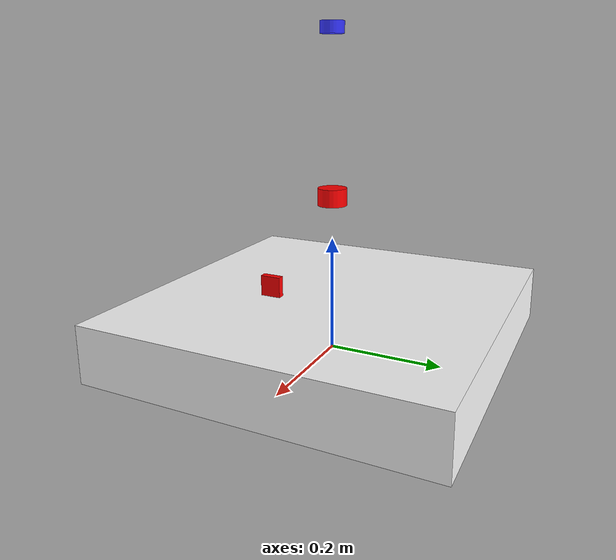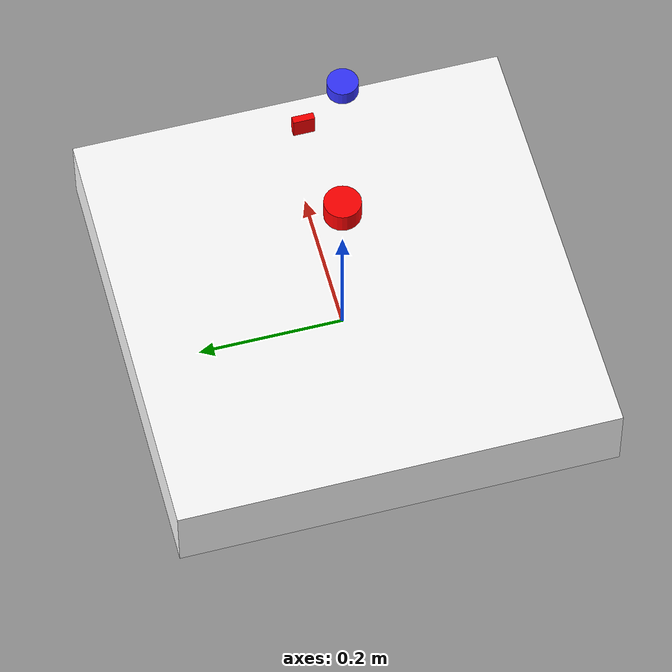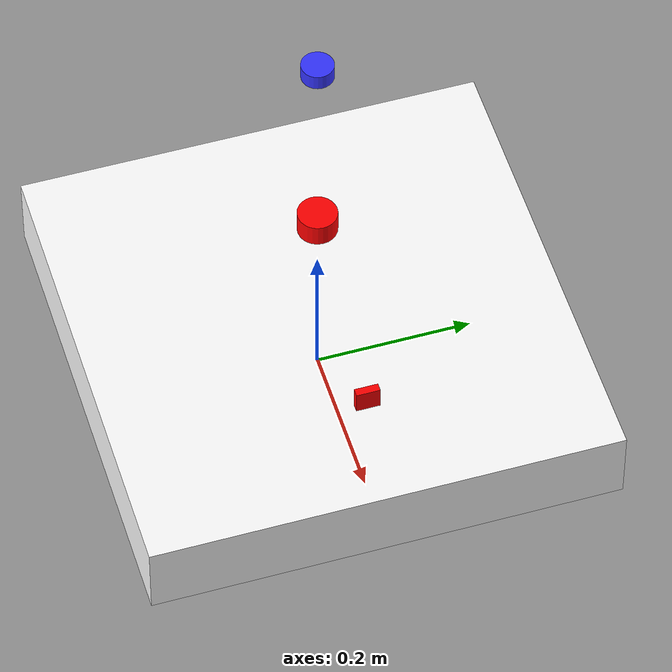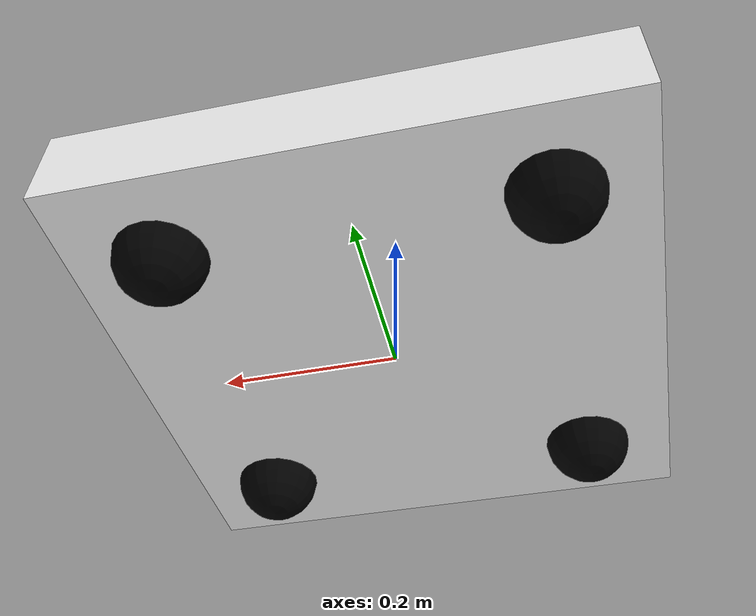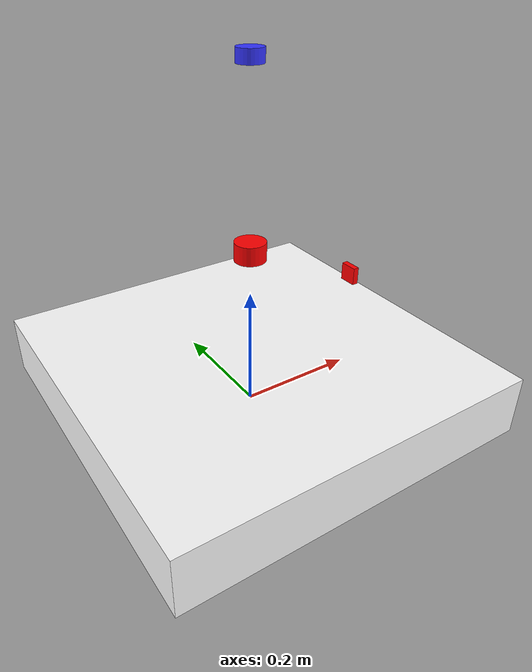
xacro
<?xml version="1.0"?>
<robot xmlns:xacro="http://www.ros.org/wiki/xacro"  name="rect_obj">
    <xacro:arg name="prefix" default="" />

    <xacro:include filename="rect_obj_core_corr.xacro"/>
    <xacro:include filename="lidar_corr_rect_obj.xacro"/>
    <xacro:include filename="camera_corr_rect_obj.xacro"/>
    <xacro:include filename="imu_corr_rect_obj.xacro"/>

    <xacro:rect_obj prefix=""/>
    <xacro:lidar_module prefix=""/>
    <xacro:camera_module prefix=""/>
    <xacro:imu_module prefix=""/>

</robot>

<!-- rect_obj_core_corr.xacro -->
<robot xmlns:xacro="http://www.ros.org/wiki/xacro"  >

    <xacro:macro name="rect_obj" params="prefix">

    <xacro:include filename="inertial_macros.xacro"/>

    <material name="white">
        <color rgba="1 1 1 1" />
    </material>

    <material name="orange">
        <color rgba="1 0.3 0.1 1" />
    </material>

    <material name="blue">
        <color rgba="0.2 0.2 1 1" />
    </material>

    <material name="red">
        <color rgba="1 0 0 1" />
    </material>

    <material name="black">
        <color rgba="0 0 0 1" />
    </material>

    <!-- Base link-->
    <link name="${prefix}base_link">

    </link>

    <!-- Base_Footprint Link-->

    <joint name="${prefix}base_footprint_joint" type="fixed">
        <parent link="${prefix}base_link" />
        <child link="${prefix}base_footprint" />
        <origin xyz= '0 0 0' rpy="0 0 0"/>
    </joint>
    <link name="${prefix}base_footprint">
    </link>

    <!-- chassi link-->
    <joint name="${prefix}chassis_joint" type="fixed">
        <parent link="${prefix}base_link" />
        <child link="${prefix}chassis" />
        <origin xyz= '0 0 0'/>
    </joint>

    <link name="${prefix}chassis">
        <visual>
            <origin xyz="0 0 0.05" />
            <geometry>
                <box size="0.6 0.6 0.1"/>
            </geometry>
            <material name="white" />
        </visual>
        <collision>
            <origin xyz="0 0 0.05" />
            <geometry>
                <box size="0.6 0.6 0.1"/>
            </geometry>
        </collision>
        <xacro:inertial_box mass="1.0" x="0.6" y="0.6" z="0.1">
            <origin xyz="0 0 0.05" rpy="0 0 0"/>
        </xacro:inertial_box>
    </link>

    <gazebo reference="${prefix}chassis">
        <material>Gazebo/White</material>
    </gazebo>

    <!-- caster wheel link front right-->

    <joint name="${prefix}caster_wheel_joint_fr" type="fixed">
        <parent link="${prefix}chassis"/>
        <child link="${prefix}caster_wheel_fr"/>
        <origin xyz="0.2 -0.2 0"/>
    </joint>

    <link name="${prefix}caster_wheel_fr">
        <visual>
            <geometry>
                <sphere radius="0.05"/>
            </geometry>
            <material name="black"/>
        </visual>
        <collision>
            <geometry>
                <sphere radius="0.05"/>
            </geometry>
        </collision>
        <xacro:inertial_sphere mass="0.1" radius="0.05">
            <origin xyz="0 0 0" rpy="0 0 0"/>
        </xacro:inertial_sphere>
    </link>

    <gazebo reference="${prefix}caster_wheel_fr">
        <material>Gazebo/Black</material>
        <mu1 value="0.1"/>
        <mu2 value="0.1"/>

    </gazebo>

    <!-- caster wheel link front left-->

    <joint name="${prefix}caster_wheel_joint_fl" type="fixed">
        <parent link="${prefix}chassis"/>
        <child link="${prefix}caster_wheel_fl"/>
        <origin xyz="0.2 0.2 0"/>
    </joint>

    <link name="${prefix}caster_wheel_fl">
        <visual>
            <geometry>
                <sphere radius="0.05"/>
            </geometry>
            <material name="black"/>
        </visual>
        <collision>
            <geometry>
                <sphere radius="0.05"/>
            </geometry>
        </collision>
        <xacro:inertial_sphere mass="0.1" radius="0.05">
            <origin xyz="0 0 0" rpy="0 0 0"/>
        </xacro:inertial_sphere>
    </link>

    <gazebo reference="${prefix}caster_wheel_fl">
        <material>Gazebo/Black</material>
        <mu1 value="0.1"/>
        <mu2 value="0.1"/>

    </gazebo>

    <!-- caster wheel link back right-->

    <joint name="${prefix}caster_wheel_joint_br" type="fixed">
        <parent link="${prefix}chassis"/>
        <child link="${prefix}caster_wheel_br"/>
        <origin xyz="-0.2 -0.2 0"/>
    </joint>

    <link name="${prefix}caster_wheel_br">
        <visual>
            <geometry>
                <sphere radius="0.05"/>
            </geometry>
            <material name="black"/>
        </visual>
        <collision>
            <geometry>
                <sphere radius="0.05"/>
            </geometry>
        </collision>
        <xacro:inertial_sphere mass="0.1" radius="0.05">
            <origin xyz="0 0 0" rpy="0 0 0"/>
        </xacro:inertial_sphere>
    </link>

    <gazebo reference="${prefix}caster_wheel_br">
        <material>Gazebo/Black</material>
        <mu1 value="0.1"/>
        <mu2 value="0.1"/>

    </gazebo>

    <!-- caster wheel link back left-->

    <joint name="${prefix}caster_wheel_joint_bl" type="fixed">
        <parent link="${prefix}chassis"/>
        <child link="${prefix}caster_wheel_bl"/>
        <origin xyz="-0.2 0.2 0"/>
    </joint>

    <link name="${prefix}caster_wheel_bl">
        <visual>
            <geometry>
                <sphere radius="0.05"/>
            </geometry>
            <material name="black"/>
        </visual>
        <collision>
            <geometry>
                <sphere radius="0.05"/>
            </geometry>
        </collision>
        <xacro:inertial_sphere mass="0.1" radius="0.05">
            <origin xyz="0 0 0" rpy="0 0 0"/>
        </xacro:inertial_sphere>
    </link>

    <gazebo reference="${prefix}caster_wheel_bl">
        <material>Gazebo/Black</material>
        <mu1 value="0.1"/>
        <mu2 value="0.1"/>

    </gazebo>

    <!-- fixed point f-->

    <!-- fixed point b-->

    <!-- fixed point r-->

    <!-- fixed point l-->

    </xacro:macro>

</robot>

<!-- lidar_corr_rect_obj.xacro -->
<robot xmlns:xacro="http://www.ros.org/wiki/xacro" >
    <xacro:macro name="lidar_module" params="prefix">
        <xacro:include filename="inertial_macros.xacro"/>

        <joint name="${prefix}laser_joint" type="fixed">
            <parent link="${prefix}chassis"/>
            <child link="${prefix}laser_frame"/>
            <origin xyz="0 0 0.275" rpy="0 0 0"/>
        </joint>

        <link name="${prefix}laser_frame">
            <visual>
                <geometry>
                    <cylinder radius="0.025" length='0.03'/>
                </geometry>
                <material name="red"/>
            </visual>
            <collision>
                <geometry>
                    <cylinder radius="0.025" length='0.03'/>
                </geometry>
            </collision>
            <xacro:inertial_cylinder mass="0.1" length="0.03" radius="0.025">
                <origin xyz="0 0 0" rpy="0 0 0"/>
            </xacro:inertial_cylinder>
        </link>

        <gazebo reference="${prefix}laser_frame">
            <material>Gazebo/Red</material>

            <sensor name="${prefix}laser" type="ray">
                <pose> 0 0 0 0 0 0 </pose>
                <visualize>false</visualize>
                <update_rate>10</update_rate>
                <ray>
                    <scan>
                        <horizontal>
                            <samples>360</samples>
                            <min_angle>-3.14</min_angle>
                            <max_angle>3.14</max_angle>
                        </horizontal>
                    </scan>
                    <range>
                        <min>0.3</min>
                        <max>12</max>
                    </range>
                </ray>
                <plugin name="laser_controller" filename="libgazebo_ros_ray_sensor.so">
                    <ros>
                        <remapping>out:=scan</remapping>
                    </ros>
                    <output_type>sensor_msgs/LaserScan</output_type>
                    <frame_name>${prefix}laser_frame</frame_name>
                </plugin>
            </sensor>
        </gazebo>
    </xacro:macro>

</robot>

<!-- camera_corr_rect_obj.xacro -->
<robot xmlns:xacro="http://www.ros.org/wiki/xacro" >
    <xacro:macro name="camera_module" params="prefix">

        <joint name="${prefix}camera_joint" type="fixed">
            <parent link="${prefix}chassis"/>
            <child link="${prefix}camera_link"/>
            <origin xyz="0.205 0 0.18" rpy="0 0 0"/>
        </joint>

        <link name="${prefix}camera_link">
            <visual>
                <geometry>
                    <box size="0.010 0.03 0.03" />
                </geometry>
                <material name="red"/>
            </visual>
        </link>

        <joint name="${prefix}camera_optical_joint" type="fixed">
            <parent link="${prefix}camera_link"/>
            <child link="${prefix}camera_link_optical"/>
            <origin xyz="0.0 0.0 0.0" rpy="${-pi/2} 0 ${-pi/2}"/>
        </joint>

        <link name="${prefix}camera_link_optical">

        </link>

        <gazebo reference="${prefix}camera_link">
            <material>Gazebo/Red</material>

            <sensor name="${prefix}camera" type="camera">
                <pose> 0 0 0 0 0 0 </pose>
                <visualize>false</visualize>
                <update_rate>10</update_rate>
                <camera>
                    <horizontal_fov>1.089</horizontal_fov>
                    <image>
                        <format>R8G8B8</format>
                        <width>640</width>
                        <height>480</height>
                    </image>
                    <clip>
                        <near>0.05</near>
                        <far>8.0</far>
                    </clip>
                </camera>
                <plugin name="${prefix}camera_controller" filename="libgazebo_ros_camera.so">
                    <frame_name>${prefix}camera_link_optical</frame_name>
                </plugin>
            </sensor>
        </gazebo>
    </xacro:macro>

</robot>

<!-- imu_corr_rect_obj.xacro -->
<robot xmlns:xacro="http://www.ros.org/wiki/xacro" >

    <xacro:macro name="imu_module" params="prefix">

      <xacro:include filename="inertial_macros.xacro"/>

      <joint name="${prefix}imu_joint" type="fixed">
          <parent link="${prefix}base_link"/>
          <child link="${prefix}imu_link"/>
          <origin xyz="0 0 0.55" rpy="0 0 0"/>
      </joint>

      <link name="${prefix}imu_link">
        <visual>
          <geometry>
            <cylinder radius='0.02' length='0.02'/>
            </geometry>
            <material name='blue'/>
        </visual>
        <collision>
          <geometry>
            <cylinder radius='0.02' length='0.02'/>
          </geometry>
        </collision>
        <xacro:inertial_cylinder mass="0.01" length="0.02" radius="0.02">
          <origin xyz="0 0 0" rpy="0 0 0"/>
        </xacro:inertial_cylinder>
      </link>

      <gazebo reference="${prefix}imu_link">
        <material>Gazebo/Blue</material>
        <gravity>true</gravity>
        <sensor name="${prefix}imu" type="imu">
          <always_on>true</always_on>
          <update_rate>200</update_rate>
          <visualize>true</visualize>
          <imu>
            <angular_velocity>
              <x>
                <noise type="gaussian">
                  <mean>0.0</mean>
                  <stddev>2e-10</stddev>
                </noise>
              </x>
              <y>
                <noise type="gaussian">
                  <mean>0.0</mean>
                  <stddev>2e-10</stddev>
                </noise>
              </y>
              <z>
                <noise type="gaussian">
                  <mean>0.0</mean>
                  <stddev>2e-10</stddev>
                </noise>
              </z>
            </angular_velocity>
            <linear_acceleration>
              <x>
                <noise type="gaussian">
                  <mean>0.0</mean>
                  <stddev>1.7e-4</stddev>
                </noise>
              </x>
              <y>
                <noise type="gaussian">
                  <mean>0.0</mean>
                  <stddev>1.7e-10</stddev>
                </noise>
              </y>
              <z>
                <noise type="gaussian">
                  <mean>0.0</mean>
                  <stddev>1.7e-10</stddev>
                </noise>
              </z>
            </linear_acceleration>
          </imu>
          <plugin name="robot_imu" filename="libgazebo_ros_imu_sensor.so">
            <ros>
              <remapping>~/out:=imu</remapping>
            </ros>
          </plugin>
        </sensor>
      </gazebo>

    </xacro:macro>

</robot>
